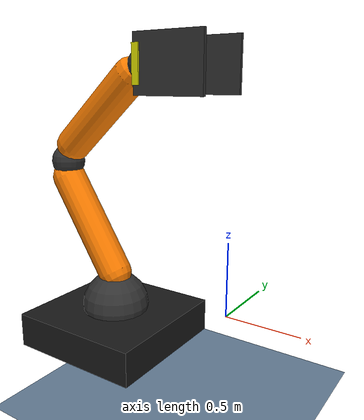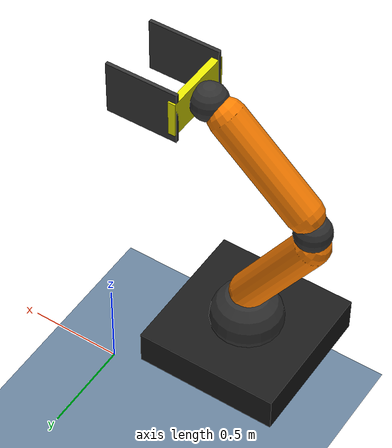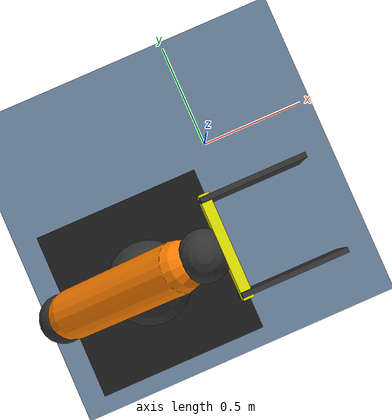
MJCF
<mujoco>
  <asset>
    <texture name="grid" type="2d" builtin="checker" rgb1=".6 .7 .8"
     rgb2=".2 .3 .4" width="300" height="300" mark="none"/>
    <material name="grid" texture="grid" texrepeat="1 1"
     texuniform="true" reflectance=".2"/>

    <material name="siliconeMaterial"
              specular="0.2" shininess="0.1" reflectance="0.1"/>
  </asset>

  <default>
  </default>

  <worldbody>
    <light name="light" pos="0 0 1"/>
    <body name="floor">
      <geom name="floor_geom" type="plane" pos="0 0 -.5" size="10 10 .1" material="grid"/>
    </body>

    <camera name="fixed" pos="0 -1.3 .5" xyaxes="1 0 0 0 1 2"/>

    <!-- arm body  -->
    <body name="base" pos="-0.5 -0.5 0.03">
      <geom name="base_geom" type="box"
      size="0.4 0.4 0.1" mass="10000000"
      rgba="0.1 0.1 0.1 1"/>
      <freejoint/>

      <body name="base_1" pos="0 0 0.13">
        <geom name="base_1_geom" type="sphere"
        size="0.2 0.2 0.2" rgba='0.2 0.2 0.2 1'/>
        <joint name="base_1_joint" type="hinge" axis="0 0 1"/>

        <joint name="base_2_joint" type="hinge" axis="0 1 0"/>

        <body name="arm_base" pos="0 0 0.25">
          <geom name="arm_base_geom" type="capsule"
          size="0.1 0.1 0.1" fromto='0 0 -0.05 -0.35 0 0.5'
          rgba="1 0.5 0 1"/>

          <body name="arm_base_2" pos="-0.35 0 0.6">
            <geom name="arm_base_2_geom" type="sphere"
            size="0.1 0.1 0.1" rgba='0.2 0.2 0.2 1'/>
            <joint name="arm_base_2_joint" type="hinge" axis="0 1 0" pos="0 0 0"/>

            <body name="arm_base_2_1" pos="0 0 0.25">
              <geom name="arm_base_2_1_geom" type="capsule"
              size="0.1 0.1 0.1" fromto='0.05 0 -0.15 0.5 0 0.25'
              rgba="1 0.5 0 1"/>

              <!-- handle  -->
              <body name="arm_handle" pos="0.6 0 0.3">
                <geom name="arm_hanfle_geom" size="0.1 0.1"
                type="sphere" rgba='0.2 0.2 0.2 1'/>

                <body name="arm_handle_1" pos="0.08 0 0">
                  <geom name="arm_handle_1_geom"
                  rgba="0.9 0.9 0 1"
                  size="0.02 0.2 0.1" type="box"/>

                  <body name="arm_finger_left" pos="0.18 0.18 0">
                    <joint name="arm_finger_left_joint" type="slide" axis="0 1 0" range="-0.15 0"/>
                    <geom name="arm_finger_left_geom"
                    rgba="0.2 0.2 0.2 1"
                    size="0.2 0.01 0.15"
                    material="siliconeMaterial"
                    type="box"

                    condim="6"
                    friction="6 0.005 0.0001"
                    solref="0.02 1"
                    solimp="1.2 1.1"
                    />
                  </body>

                  <body name="arm_finger_right" pos="0.18 -0.18 0">
                    <joint name="arm_finger_right_joint" type="slide" axis="0 1 0" range="0 0.15"/>
                    <geom name="arm_finger_right_geom"
                    rgba="0.2 0.2 0.2 1"
                    size="0.2 0.01 0.15"
                    material="siliconeMaterial"
                    type="box"

                    condim="6"
                    friction="6 0.005 0.0001"
                    solref="0.02 1"
                    solimp="1.2 1.1"
                    />
                  </body>

                </body>

              </body>

            </body>

          </body>

        </body>
      </body>
    </body>

    <!-- egg itself -->
  </worldbody>

  <actuator>

    <position name="p1" joint="base_1_joint"
          kp="500" kv="200"/>
          <!-- base_2_joint -->

    <position name="p2_arm" joint="base_2_joint"
          kp="1000" kv="200"/>

    <position name="p1_arm_2" joint="arm_base_2_joint"
          kp="500" kv="200"/>

    <!-- this things simulate the servo -->
    <position name="p_leftfinger" joint="arm_finger_left_joint" kp="500" kv="200"/>
    <position name="p_rightfinger" joint="arm_finger_right_joint" kp="500" kv="200"/>
  </actuator>

</mujoco>
